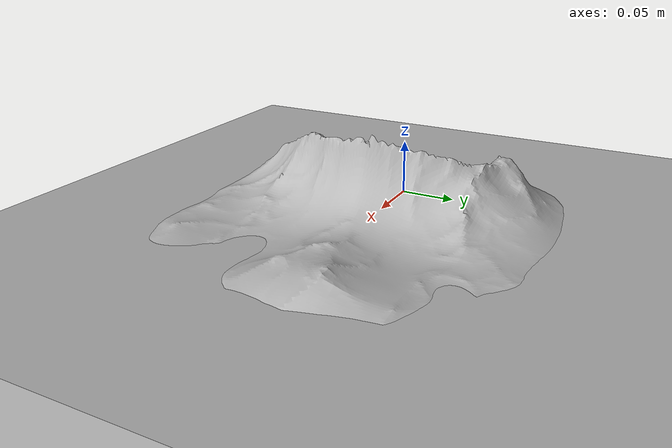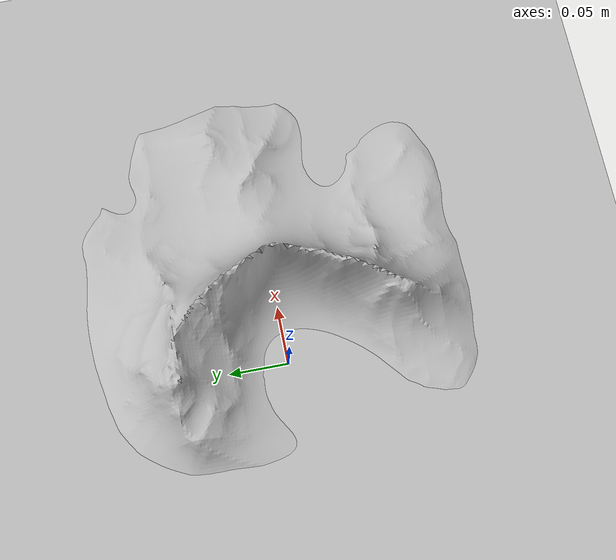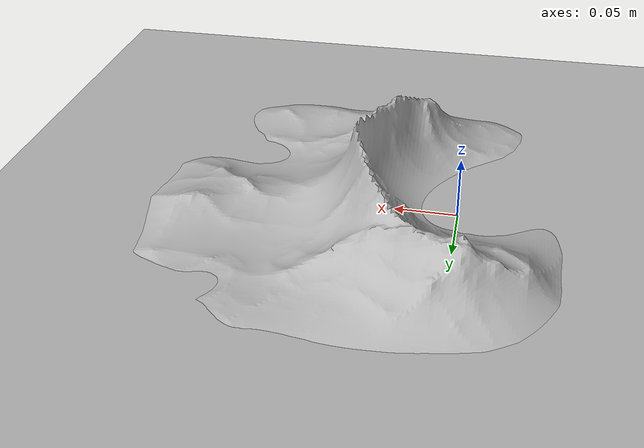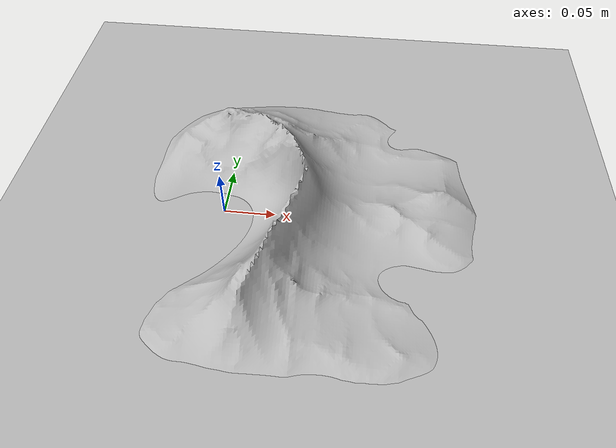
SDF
<?xml version="1.0" ?>
<sdf version="1.4">
  <world name="default">

    <!-- Global light source -->
    <include>
      <uri>model://sun</uri>
    </include>

    <include>
      <uri>model://plane</uri>
    </include>

    <include>
      <uri>model://mountain</uri>
    </include>
  </world>
</sdf>

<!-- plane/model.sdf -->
<sdf version="1.4">
  <model name="plane">
    <static>true</static>
    <pose>0 0 -0.15 0 0 0</pose>
    <link name="link">
      <collision name="collision">
        <geometry>
          <box>
            <size>20 20 0.3</size>
          </box>
        </geometry>
        <surface>
          <friction>
            <ode>
              <mu>1</mu>
              <mu2>1</mu2>
            </ode>
          </friction>
        </surface>
      </collision>
      <visual name="visual">
        <geometry>
          <box>
            <size>20 20 0.3</size>
          </box>
        </geometry>
        <material>
          <script>
          	<uri>model://materials/scripts</uri>
          	<uri>model://materials/textures</uri>
          	<name>forest/floor</name>
          </script>
        </material>
      </visual>
    </link>
  </model>
</sdf>

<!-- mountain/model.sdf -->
<sdf version="1.4">
  <model name="mountain">
    <static>true</static>
    <pose>0 0 0 1.57 0 0</pose>
    <link name="link">
      <collision name="collision">
        <geometry>
          <mesh>
            <uri>model://mountain/meshes/mountain.obj</uri>
            <scale>0.018 0.018 0.018</scale>
          </mesh>
        </geometry>
        <surface>
          <friction>
            <ode>
              <mu>2</mu>
              <mu2>0.01</mu2>
            </ode>
          </friction>
        </surface>
      </collision>
      <visual name="visual">
        <geometry>
          <mesh>
            <uri>model://mountain/meshes/mountain.obj</uri>
            <scale>0.018 0.018 0.018</scale>
          </mesh>
        </geometry>
        <material>
          <script>
            <uri>model://materials/scripts</uri>
          	<uri>model://materials/textures</uri>
          	<name>rock/floor</name>
          </script>
        </material>
      </visual>
    </link>
  </model>
</sdf>
